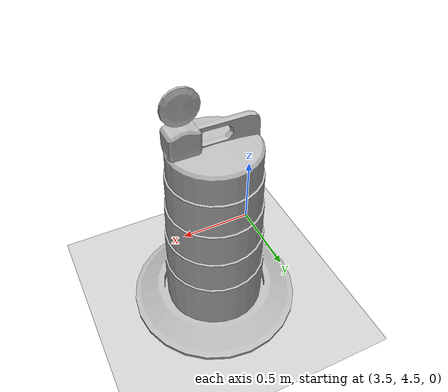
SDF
<?xml version="1.0" ?>
<sdf version="1.4">
  <world name="default">
    <include>
      <uri>model://ground_plane</uri>
    </include>
    <include>
      <uri>model://sun</uri>
    </include>
    <model name='Construction Barrel'>
      <link name='link'>
        <inertial>
          <pose frame=''>0 0 0.4 0 -0 0</pose>
          <mass>500</mass>
          <inertia>
            <ixx>51.2096</ixx>
            <iyy>51.2096</iyy>
            <izz>25</izz>
            <ixy>0</ixy>
            <ixz>0</ixz>
            <iyz>0</iyz>
          </inertia>
        </inertial>
        <collision name='collision'>
          <geometry>
            <mesh>
              <uri>model://construction_barrel/meshes/construction_barrel.dae</uri>
            </mesh>
          </geometry>
          <max_contacts>10</max_contacts>
          <surface>
            <contact>
              <ode/>
            </contact>
            <bounce/>
            <friction>
              <torsional>
                <ode/>
              </torsional>
              <ode/>
            </friction>
          </surface>
        </collision>
        <visual name='visual'>
          <geometry>
            <mesh>
              <uri>model://construction_barrel/meshes/construction_barrel.dae</uri>
            </mesh>
          </geometry>
        </visual>
        <self_collide>0</self_collide>
        <enable_wind>0</enable_wind>
        <kinematic>0</kinematic>
      </link>
      <pose frame=''>4 5 0 0 -0 0</pose>
    </model>

    <!-- Only one ROS interface plugin is required per world, as any other plugin can connect a Gazebo
         topic to a ROS topic (or vise versa). -->
    <plugin name="ros_interface_plugin" filename="librotors_gazebo_ros_interface_plugin.so"/>

    <spherical_coordinates>
      <surface_model>EARTH_WGS84</surface_model>
      <latitude_deg>47.3667</latitude_deg>
      <longitude_deg>8.5500</longitude_deg>
      <elevation>500.0</elevation>
      <heading_deg>0</heading_deg>
    </spherical_coordinates>
    <physics type='ode'>
      <ode>
        <solver>
          <type>quick</type>
          <iters>1000</iters>
          <sor>1.3</sor>
        </solver>
        <constraints>
          <cfm>0</cfm>
          <erp>0.2</erp>
          <contact_max_correcting_vel>100</contact_max_correcting_vel>
          <contact_surface_layer>0.001</contact_surface_layer>
        </constraints>
      </ode>
      <max_step_size>0.01</max_step_size>
      <real_time_factor>1</real_time_factor>
      <real_time_update_rate>100</real_time_update_rate>
      <gravity>0 0 -9.8</gravity>
    </physics>
  </world>
</sdf>
